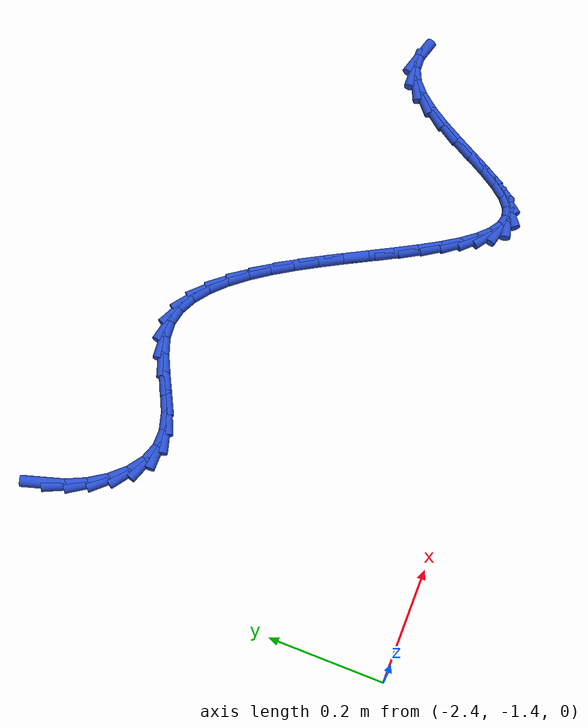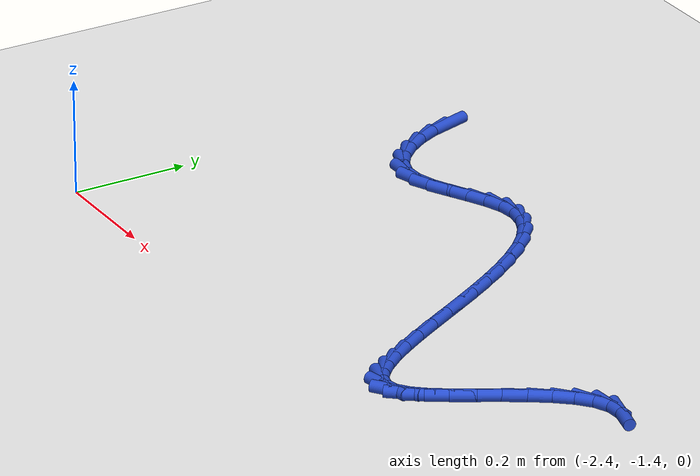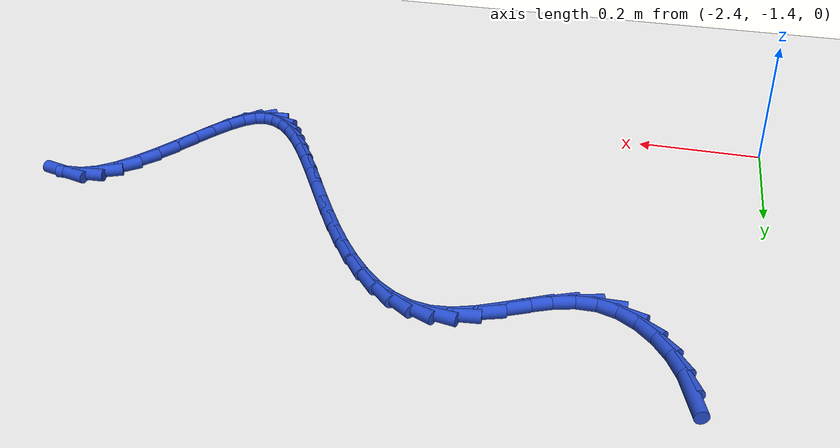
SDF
<sdf version="1.6">
 <world name="default">
  <model name="ground_plane">
   <static>1</static>
   <link name="link">
    <collision name="collision">
     <geometry><plane><normal>0 0 1</normal><size>100 100</size></plane></geometry>
     <surface><friction><ode><mu>100</mu><mu2>50</mu2></ode></friction></surface>
    </collision>
    <visual name="visual">
     <cast_shadows>0</cast_shadows>
     <geometry><plane><normal>0 0 1</normal><size>100 100</size></plane></geometry>
     <material>
      <script><uri>file://media/materials/scripts/gazebo.material</uri><name>Gazebo/WhiteGlow</name></script>
     </material>
    </visual>
   </link>
  </model>
  <model name="line">
   <link name="link_150">
    <pose>-2.2983684873544794 -0.7492071930287094 0.01 0 1.57 -1.2812448963938037</pose>
    <collision name="collision">
     <geometry><cylinder><radius>0.01</radius><length>0.08</length></cylinder></geometry>
    </collision>
    <visual name="visual">
     <material>
      <script><name>Gazebo/Blue</name><uri>file://media/materials/scripts/gazebo.material</uri></script>
     </material>
     <geometry><cylinder><radius>0.01</radius><length>0.08</length></cylinder></geometry>
    </visual>
   </link>
   <link name="link_151">
    <pose>-2.287929485288068 -0.7842462978147963 0.01 0 1.57 -1.1337347522681835</pose>
    <collision name="collision">
     <geometry><cylinder><radius>0.01</radius><length>0.08</length></cylinder></geometry>
    </collision>
    <visual name="visual">
     <material>
      <script><name>Gazebo/Blue</name><uri>file://media/materials/scripts/gazebo.material</uri></script>
     </material>
     <geometry><cylinder><radius>0.01</radius><length>0.08</length></cylinder></geometry>
    </visual>
   </link>
   <link name="link_152">
    <pose>-2.2720037878934947 -0.8183341418841764 0.01 0 1.57 -0.9870078547526618</pose>
    <collision name="collision">
     <geometry><cylinder><radius>0.01</radius><length>0.08</length></cylinder></geometry>
    </collision>
    <visual name="visual">
     <material>
      <script><name>Gazebo/Blue</name><uri>file://media/materials/scripts/gazebo.material</uri></script>
     </material>
     <geometry><cylinder><radius>0.01</radius><length>0.08</length></cylinder></geometry>
    </visual>
   </link>
   <link name="link_153">
    <pose>-2.2514480216852015 -0.8494511140951984 0.01 0 1.57 -0.8210039664855057</pose>
    <collision name="collision">
     <geometry><cylinder><radius>0.01</radius><length>0.08</length></cylinder></geometry>
    </collision>
    <visual name="visual">
     <material>
      <script><name>Gazebo/Blue</name><uri>file://media/materials/scripts/gazebo.material</uri></script>
     </material>
     <geometry><cylinder><radius>0.01</radius><length>0.08</length></cylinder></geometry>
    </visual>
   </link>
   <link name="link_154">
    <pose>-2.227118902501116 -0.8755775016922243 0.01 0 1.57 -0.611810483640526</pose>
    <collision name="collision">
     <geometry><cylinder><radius>0.01</radius><length>0.08</length></cylinder></geometry>
    </collision>
    <visual name="visual">
     <material>
      <script><name>Gazebo/Blue</name><uri>file://media/materials/scripts/gazebo.material</uri></script>
     </material>
     <geometry><cylinder><radius>0.01</radius><length>0.08</length></cylinder></geometry>
    </visual>
   </link>
   <link name="link_155">
    <pose>-2.1998731461791645 -0.8946935919196157 0.01 0 1.57 -0.33146996697636805</pose>
    <collision name="collision">
     <geometry><cylinder><radius>0.01</radius><length>0.08</length></cylinder></geometry>
    </collision>
    <visual name="visual">
     <material>
      <script><name>Gazebo/Blue</name><uri>file://media/materials/scripts/gazebo.material</uri></script>
     </material>
     <geometry><cylinder><radius>0.01</radius><length>0.08</length></cylinder></geometry>
    </visual>
   </link>
   <link name="link_156">
    <pose>-2.17056746855727 -0.9047796720217341 0.01 0 1.57 0.015327456762250044</pose>
    <collision name="collision">
     <geometry><cylinder><radius>0.01</radius><length>0.08</length></cylinder></geometry>
    </collision>
    <visual name="visual">
     <material>
      <script><name>Gazebo/Blue</name><uri>file://media/materials/scripts/gazebo.material</uri></script>
     </material>
     <geometry><cylinder><radius>0.01</radius><length>0.08</length></cylinder></geometry>
    </visual>
   </link>
   <link name="link_157">
    <pose>-2.140010755078997 -0.9043112786364936 0.01 0 1.57 0.2842182870942367</pose>
    <collision name="collision">
     <geometry><cylinder><radius>0.01</radius><length>0.08</length></cylinder></geometry>
    </collision>
    <visual name="visual">
     <material>
      <script><name>Gazebo/Blue</name><uri>file://media/materials/scripts/gazebo.material</uri></script>
     </material>
     <geometry><cylinder><radius>0.01</radius><length>0.08</length></cylinder></geometry>
    </visual>
   </link>
   <link name="link_158">
    <pose>-2.1086839190478672 -0.895159864442441 0.01 0 1.57 0.42936603321654776</pose>
    <collision name="collision">
     <geometry><cylinder><radius>0.01</radius><length>0.08</length></cylinder></geometry>
    </collision>
    <visual name="visual">
     <material>
      <script><name>Gazebo/Blue</name><uri>file://media/materials/scripts/gazebo.material</uri></script>
     </material>
     <geometry><cylinder><radius>0.01</radius><length>0.08</length></cylinder></geometry>
    </visual>
   </link>
   <link name="link_159">
    <pose>-2.0769303013602913 -0.8806213456228721 0.01 0 1.57 0.4812315898707044</pose>
    <collision name="collision">
     <geometry><cylinder><radius>0.01</radius><length>0.08</length></cylinder></geometry>
    </collision>
    <visual name="visual">
     <material>
      <script><name>Gazebo/Blue</name><uri>file://media/materials/scripts/gazebo.material</uri></script>
     </material>
     <geometry><cylinder><radius>0.01</radius><length>0.08</length></cylinder></geometry>
    </visual>
   </link>
   <link name="link_160">
    <pose>-2.0450927721872647 -0.8639965123848328 0.01 0 1.57 0.4540019908953914</pose>
    <collision name="collision">
     <geometry><cylinder><radius>0.01</radius><length>0.08</length></cylinder></geometry>
    </collision>
    <visual name="visual">
     <material>
      <script><name>Gazebo/Blue</name><uri>file://media/materials/scripts/gazebo.material</uri></script>
     </material>
     <geometry><cylinder><radius>0.01</radius><length>0.08</length></cylinder></geometry>
    </visual>
   </link>
   <link name="link_161">
    <pose>-2.0135142016997785 -0.8485861549353674 0.01 0 1.57 0.3382049086451553</pose>
    <collision name="collision">
     <geometry><cylinder><radius>0.01</radius><length>0.08</length></cylinder></geometry>
    </collision>
    <visual name="visual">
     <material>
      <script><name>Gazebo/Blue</name><uri>file://media/materials/scripts/gazebo.material</uri></script>
     </material>
     <geometry><cylinder><radius>0.01</radius><length>0.08</length></cylinder></geometry>
    </visual>
   </link>
   <link name="link_162">
    <pose>-1.9825374600688268 -0.8376910634815209 0.01 0 1.57 0.10632797293979482</pose>
    <collision name="collision">
     <geometry><cylinder><radius>0.01</radius><length>0.08</length></cylinder></geometry>
    </collision>
    <visual name="visual">
     <material>
      <script><name>Gazebo/Blue</name><uri>file://media/materials/scripts/gazebo.material</uri></script>
     </material>
     <geometry><cylinder><radius>0.01</radius><length>0.08</length></cylinder></geometry>
    </visual>
   </link>
   <link name="link_163">
    <pose>-1.9524936431844218 -0.8344844720278327 0.01 0 1.57 -0.18559679450589212</pose>
    <collision name="collision">
     <geometry><cylinder><radius>0.01</radius><length>0.08</length></cylinder></geometry>
    </collision>
    <visual name="visual">
     <material>
      <script><name>Gazebo/Blue</name><uri>file://media/materials/scripts/gazebo.material</uri></script>
     </material>
     <geometry><cylinder><radius>0.01</radius><length>0.08</length></cylinder></geometry>
    </visual>
   </link>
   <link name="link_164">
    <pose>-1.9235095576276822 -0.8399264545143493 0.01 0 1.57 -0.44024513420251904</pose>
    <collision name="collision">
     <geometry><cylinder><radius>0.01</radius><length>0.08</length></cylinder></geometry>
    </collision>
    <visual name="visual">
     <material>
      <script><name>Gazebo/Blue</name><uri>file://media/materials/scripts/gazebo.material</uri></script>
     </material>
     <geometry><cylinder><radius>0.01</radius><length>0.08</length></cylinder></geometry>
    </visual>
   </link>
   <link name="link_165">
    <pose>-1.8955390033044406 -0.8531028239777204 0.01 0 1.57 -0.635895885301568</pose>
    <collision name="collision">
     <geometry><cylinder><radius>0.01</radius><length>0.08</length></cylinder></geometry>
    </collision>
    <visual name="visual">
     <material>
      <script><name>Gazebo/Blue</name><uri>file://media/materials/scripts/gazebo.material</uri></script>
     </material>
     <geometry><cylinder><radius>0.01</radius><length>0.08</length></cylinder></geometry>
    </visual>
   </link>
   <link name="link_166">
    <pose>-1.868530316596095 -0.8730402045809753 0.01 0 1.57 -0.7781917734228643</pose>
    <collision name="collision">
     <geometry><cylinder><radius>0.01</radius><length>0.08</length></cylinder></geometry>
    </collision>
    <visual name="visual">
     <material>
      <script><name>Gazebo/Blue</name><uri>file://media/materials/scripts/gazebo.material</uri></script>
     </material>
     <geometry><cylinder><radius>0.01</radius><length>0.08</length></cylinder></geometry>
    </visual>
   </link>
   <link name="link_167">
    <pose>-1.8424318338840449 -0.8987652204871464 0.01 0 1.57 -0.8801193703161</pose>
    <collision name="collision">
     <geometry><cylinder><radius>0.01</radius><length>0.08</length></cylinder></geometry>
    </collision>
    <visual name="visual">
     <material>
      <script><name>Gazebo/Blue</name><uri>file://media/materials/scripts/gazebo.material</uri></script>
     </material>
     <geometry><cylinder><radius>0.01</radius><length>0.08</length></cylinder></geometry>
    </visual>
   </link>
   <link name="link_168">
    <pose>-1.817191891549688 -0.9293044958592637 0.01 0 1.57 -0.9529428467727543</pose>
    <collision name="collision">
     <geometry><cylinder><radius>0.01</radius><length>0.08</length></cylinder></geometry>
    </collision>
    <visual name="visual">
     <material>
      <script><name>Gazebo/Blue</name><uri>file://media/materials/scripts/gazebo.material</uri></script>
     </material>
     <geometry><cylinder><radius>0.01</radius><length>0.08</length></cylinder></geometry>
    </visual>
   </link>
   <link name="link_169">
    <pose>-1.7927588259744236 -0.9636846548603589 0.01 0 1.57 -1.0045489607739821</pose>
    <collision name="collision">
     <geometry><cylinder><radius>0.01</radius><length>0.08</length></cylinder></geometry>
    </collision>
    <visual name="visual">
     <material>
      <script><name>Gazebo/Blue</name><uri>file://media/materials/scripts/gazebo.material</uri></script>
     </material>
     <geometry><cylinder><radius>0.01</radius><length>0.08</length></cylinder></geometry>
    </visual>
   </link>
   <link name="link_170">
    <pose>-1.7690809735396498 -1.0009323216534625 0.01 0 1.57 -1.0400272215616537</pose>
    <collision name="collision">
     <geometry><cylinder><radius>0.01</radius><length>0.08</length></cylinder></geometry>
    </collision>
    <visual name="visual">
     <material>
      <script><name>Gazebo/Blue</name><uri>file://media/materials/scripts/gazebo.material</uri></script>
     </material>
     <geometry><cylinder><radius>0.01</radius><length>0.08</length></cylinder></geometry>
    </visual>
   </link>
   <link name="link_171">
    <pose>-1.7461066706267652 -1.040074120401606 0.01 0 1.57 -1.0624504493915565</pose>
    <collision name="collision">
     <geometry><cylinder><radius>0.01</radius><length>0.08</length></cylinder></geometry>
    </collision>
    <visual name="visual">
     <material>
      <script><name>Gazebo/Blue</name><uri>file://media/materials/scripts/gazebo.material</uri></script>
     </material>
     <geometry><cylinder><radius>0.01</radius><length>0.08</length></cylinder></geometry>
    </visual>
   </link>
   <link name="link_172">
    <pose>-1.7237842536171688 -1.0801366752678214 0.01 0 1.57 -1.073405047733758</pose>
    <collision name="collision">
     <geometry><cylinder><radius>0.01</radius><length>0.08</length></cylinder></geometry>
    </collision>
    <visual name="visual">
     <material>
      <script><name>Gazebo/Blue</name><uri>file://media/materials/scripts/gazebo.material</uri></script>
     </material>
     <geometry><cylinder><radius>0.01</radius><length>0.08</length></cylinder></geometry>
    </visual>
   </link>
   <link name="link_173">
    <pose>-1.7020620588922593 -1.1201466104151374 0.01 0 1.57 -1.0732371606755988</pose>
    <collision name="collision">
     <geometry><cylinder><radius>0.01</radius><length>0.08</length></cylinder></geometry>
    </collision>
    <visual name="visual">
     <material>
      <script><name>Gazebo/Blue</name><uri>file://media/materials/scripts/gazebo.material</uri></script>
     </material>
     <geometry><cylinder><radius>0.01</radius><length>0.08</length></cylinder></geometry>
    </visual>
   </link>
   <link name="link_174">
    <pose>-1.6808884228334349 -1.159130550006586 0.01 0 1.57 -1.0610208271263253</pose>
    <collision name="collision">
     <geometry><cylinder><radius>0.01</radius><length>0.08</length></cylinder></geometry>
    </collision>
    <visual name="visual">
     <material>
      <script><name>Gazebo/Blue</name><uri>file://media/materials/scripts/gazebo.material</uri></script>
     </material>
     <geometry><cylinder><radius>0.01</radius><length>0.08</length></cylinder></geometry>
    </visual>
   </link>
   <link name="link_175">
    <pose>-1.6602116818220947 -1.1961151182051986 0.01 0 1.57 -1.0341813636172796</pose>
    <collision name="collision">
     <geometry><cylinder><radius>0.01</radius><length>0.08</length></cylinder></geometry>
    </collision>
    <visual name="visual">
     <material>
      <script><name>Gazebo/Blue</name><uri>file://media/materials/scripts/gazebo.material</uri></script>
     </material>
     <geometry><cylinder><radius>0.01</radius><length>0.08</length></cylinder></geometry>
    </visual>
   </link>
   <link name="link_176">
    <pose>-1.639980172239637 -1.230126939174006 0.01 0 1.57 -0.9875488759040103</pose>
    <collision name="collision">
     <geometry><cylinder><radius>0.01</radius><length>0.08</length></cylinder></geometry>
    </collision>
    <visual name="visual">
     <material>
      <script><name>Gazebo/Blue</name><uri>file://media/materials/scripts/gazebo.material</uri></script>
     </material>
     <geometry><cylinder><radius>0.01</radius><length>0.08</length></cylinder></geometry>
    </visual>
   </link>
   <link name="link_177">
    <pose>-1.6201422304674606 -1.2601926370760392 0.01 0 1.57 -0.9112941522377186</pose>
    <collision name="collision">
     <geometry><cylinder><radius>0.01</radius><length>0.08</length></cylinder></geometry>
    </collision>
    <visual name="visual">
     <material>
      <script><name>Gazebo/Blue</name><uri>file://media/materials/scripts/gazebo.material</uri></script>
     </material>
     <geometry><cylinder><radius>0.01</radius><length>0.08</length></cylinder></geometry>
    </visual>
   </link>
   <link name="link_178">
    <pose>-1.6006461928869644 -1.2853388360743292 0.01 0 1.57 -0.7866339489381228</pose>
    <collision name="collision">
     <geometry><cylinder><radius>0.01</radius><length>0.08</length></cylinder></geometry>
    </collision>
    <visual name="visual">
     <material>
      <script><name>Gazebo/Blue</name><uri>file://media/materials/scripts/gazebo.material</uri></script>
     </material>
     <geometry><cylinder><radius>0.01</radius><length>0.08</length></cylinder></geometry>
    </visual>
   </link>
   <link name="link_179">
    <pose>-1.5814403958795467 -1.3045921603319073 0.01 0 1.57 -0.5785359574061409</pose>
    <collision name="collision">
     <geometry><cylinder><radius>0.01</radius><length>0.08</length></cylinder></geometry>
    </collision>
    <visual name="visual">
     <material>
      <script><name>Gazebo/Blue</name><uri>file://media/materials/scripts/gazebo.material</uri></script>
     </material>
     <geometry><cylinder><radius>0.01</radius><length>0.08</length></cylinder></geometry>
    </visual>
   </link>
   <link name="link_180">
    <pose>-1.5624731758266062 -1.3169792340118043 0.01 0 1.57 -0.23756663012316842</pose>
    <collision name="collision">
     <geometry><cylinder><radius>0.01</radius><length>0.08</length></cylinder></geometry>
    </collision>
    <visual name="visual">
     <material>
      <script><name>Gazebo/Blue</name><uri>file://media/materials/scripts/gazebo.material</uri></script>
     </material>
     <geometry><cylinder><radius>0.01</radius><length>0.08</length></cylinder></geometry>
    </visual>
   </link>
   <link name="link_181">
    <pose>-1.5436928691095408 -1.3215266812770514 0.01 0 1.57 0.22490625832739397</pose>
    <collision name="collision">
     <geometry><cylinder><radius>0.01</radius><length>0.08</length></cylinder></geometry>
    </collision>
    <visual name="visual">
     <material>
      <script><name>Gazebo/Blue</name><uri>file://media/materials/scripts/gazebo.material</uri></script>
     </material>
     <geometry><cylinder><radius>0.01</radius><length>0.08</length></cylinder></geometry>
    </visual>
   </link>
   <link name="link_182">
    <pose>-1.5250478121097504 -1.3172611262906788 0.01 0 1.57 0.6378485634261737</pose>
    <collision name="collision">
     <geometry><cylinder><radius>0.01</radius><length>0.08</length></cylinder></geometry>
    </collision>
    <visual name="visual">
     <material>
      <script><name>Gazebo/Blue</name><uri>file://media/materials/scripts/gazebo.material</uri></script>
     </material>
     <geometry><cylinder><radius>0.01</radius><length>0.08</length></cylinder></geometry>
    </visual>
   </link>
   <link name="link_183">
    <pose>-1.5064755633606126 -1.3034952809958906 0.01 0 1.57 0.8675654423570539</pose>
    <collision name="collision">
     <geometry><cylinder><radius>0.01</radius><length>0.08</length></cylinder></geometry>
    </collision>
    <visual name="visual">
     <material>
      <script><name>Gazebo/Blue</name><uri>file://media/materials/scripts/gazebo.material</uri></script>
     </material>
     <geometry><cylinder><radius>0.01</radius><length>0.08</length></cylinder></geometry>
    </visual>
   </link>
   <link name="link_184">
    <pose>-1.4878393787410846 -1.2815141510092425 0.01 0 1.57 0.9791509772343764</pose>
    <collision name="collision">
     <geometry><cylinder><radius>0.01</radius><length>0.08</length></cylinder></geometry>
    </collision>
    <visual name="visual">
     <material>
      <script><name>Gazebo/Blue</name><uri>file://media/materials/scripts/gazebo.material</uri></script>
     </material>
     <geometry><cylinder><radius>0.01</radius><length>0.08</length></cylinder></geometry>
    </visual>
   </link>
   <link name="link_185">
    <pose>-1.4689711963265866 -1.2534340434164086 0.01 0 1.57 1.029633269358654</pose>
    <collision name="collision">
     <geometry><cylinder><radius>0.01</radius><length>0.08</length></cylinder></geometry>
    </collision>
    <visual name="visual">
     <material>
      <script><name>Gazebo/Blue</name><uri>file://media/materials/scripts/gazebo.material</uri></script>
     </material>
     <geometry><cylinder><radius>0.01</radius><length>0.08</length></cylinder></geometry>
    </visual>
   </link>
   <link name="link_186">
    <pose>-1.449702844343464 -1.2213741811428935 0.01 0 1.57 1.041627246139132</pose>
    <collision name="collision">
     <geometry><cylinder><radius>0.01</radius><length>0.08</length></cylinder></geometry>
    </collision>
    <visual name="visual">
     <material>
      <script><name>Gazebo/Blue</name><uri>file://media/materials/scripts/gazebo.material</uri></script>
     </material>
     <geometry><cylinder><radius>0.01</radius><length>0.08</length></cylinder></geometry>
    </visual>
   </link>
   <link name="link_187">
    <pose>-1.4298661510180595 -1.1874537871141995 0.01 0 1.57 1.022200080128809</pose>
    <collision name="collision">
     <geometry><cylinder><radius>0.01</radius><length>0.08</length></cylinder></geometry>
    </collision>
    <visual name="visual">
     <material>
      <script><name>Gazebo/Blue</name><uri>file://media/materials/scripts/gazebo.material</uri></script>
     </material>
     <geometry><cylinder><radius>0.01</radius><length>0.08</length></cylinder></geometry>
    </visual>
   </link>
   <link name="link_188">
    <pose>-1.4092929445767177 -1.1537920842558298 0.01 0 1.57 0.9691542258942061</pose>
    <collision name="collision">
     <geometry><cylinder><radius>0.01</radius><length>0.08</length></cylinder></geometry>
    </collision>
    <visual name="visual">
     <material>
      <script><name>Gazebo/Blue</name><uri>file://media/materials/scripts/gazebo.material</uri></script>
     </material>
     <geometry><cylinder><radius>0.01</radius><length>0.08</length></cylinder></geometry>
    </visual>
   </link>
   <link name="link_189">
    <pose>-1.387815053245783 -1.12250829549329 0.01 0 1.57 0.8710439742306699</pose>
    <collision name="collision">
     <geometry><cylinder><radius>0.01</radius><length>0.08</length></cylinder></geometry>
    </collision>
    <visual name="visual">
     <material>
      <script><name>Gazebo/Blue</name><uri>file://media/materials/scripts/gazebo.material</uri></script>
     </material>
     <geometry><cylinder><radius>0.01</radius><length>0.08</length></cylinder></geometry>
    </visual>
   </link>
   <link name="link_190">
    <pose>-1.3652643052515991 -1.0957216437520818 0.01 0 1.57 0.7032062621239273</pose>
    <collision name="collision">
     <geometry><cylinder><radius>0.01</radius><length>0.08</length></cylinder></geometry>
    </collision>
    <visual name="visual">
     <material>
      <script><name>Gazebo/Blue</name><uri>file://media/materials/scripts/gazebo.material</uri></script>
     </material>
     <geometry><cylinder><radius>0.01</radius><length>0.08</length></cylinder></geometry>
    </visual>
   </link>
   <link name="link_191">
    <pose>-1.34147252882051 -1.0755513519577096 0.01 0 1.57 0.42606327211889733</pose>
    <collision name="collision">
     <geometry><cylinder><radius>0.01</radius><length>0.08</length></cylinder></geometry>
    </collision>
    <visual name="visual">
     <material>
      <script><name>Gazebo/Blue</name><uri>file://media/materials/scripts/gazebo.material</uri></script>
     </material>
     <geometry><cylinder><radius>0.01</radius><length>0.08</length></cylinder></geometry>
    </visual>
   </link>
   <link name="link_192">
    <pose>-1.3162719313976132 -1.064113687005987 0.01 0 1.57 0.05643628098560361</pose>
    <collision name="collision">
     <geometry><cylinder><radius>0.01</radius><length>0.08</length></cylinder></geometry>
    </collision>
    <visual name="visual">
     <material>
      <script><name>Gazebo/Blue</name><uri>file://media/materials/scripts/gazebo.material</uri></script>
     </material>
     <geometry><cylinder><radius>0.01</radius><length>0.08</length></cylinder></geometry>
    </visual>
   </link>
   <link name="link_193">
    <pose>-1.289612409512236 -1.062607523327489 0.01 0 1.57 -0.2597980915755414</pose>
    <collision name="collision">
     <geometry><cylinder><radius>0.01</radius><length>0.08</length></cylinder></geometry>
    </collision>
    <visual name="visual">
     <material>
      <script><name>Gazebo/Blue</name><uri>file://media/materials/scripts/gazebo.material</uri></script>
     </material>
     <geometry><cylinder><radius>0.01</radius><length>0.08</length></cylinder></geometry>
    </visual>
   </link>
  </model>
 </world>
</sdf>
